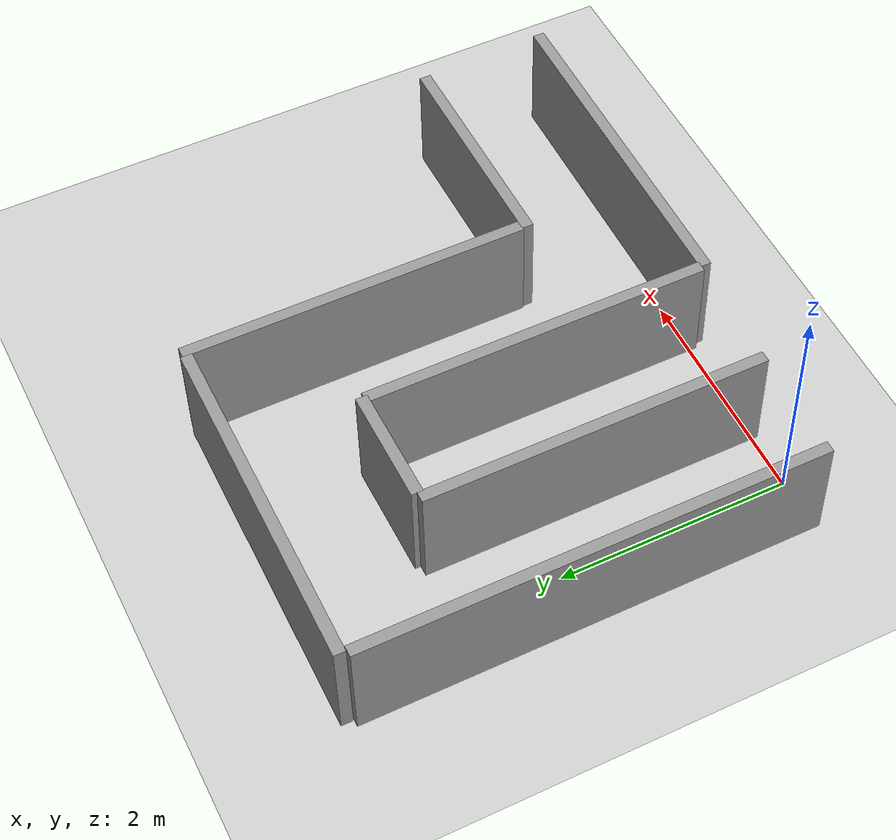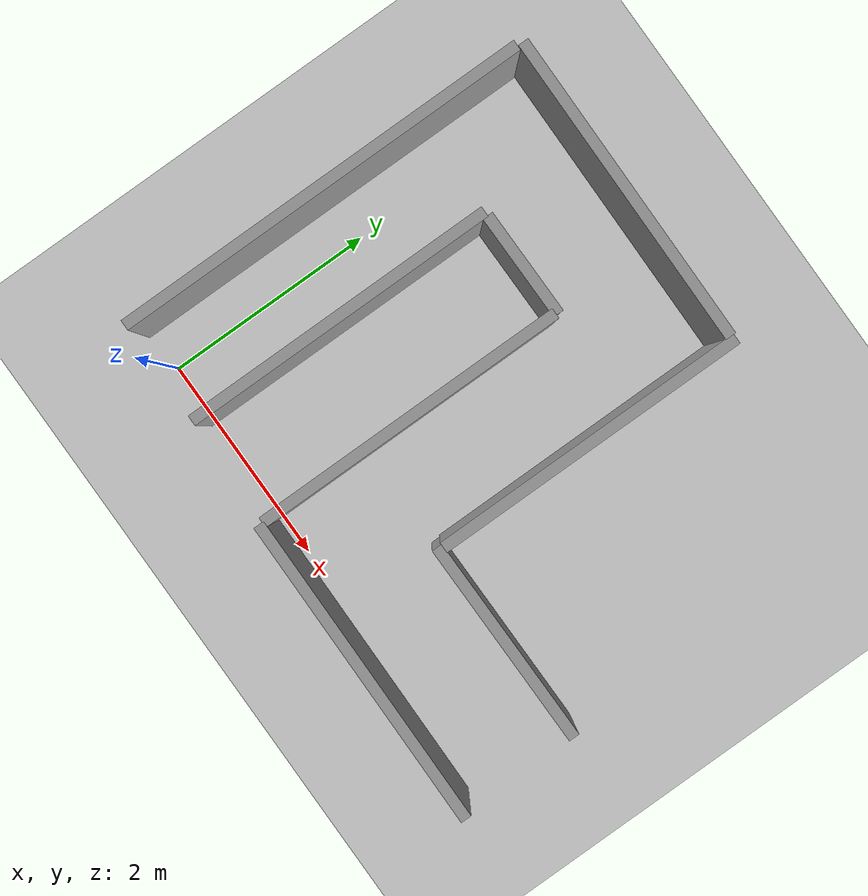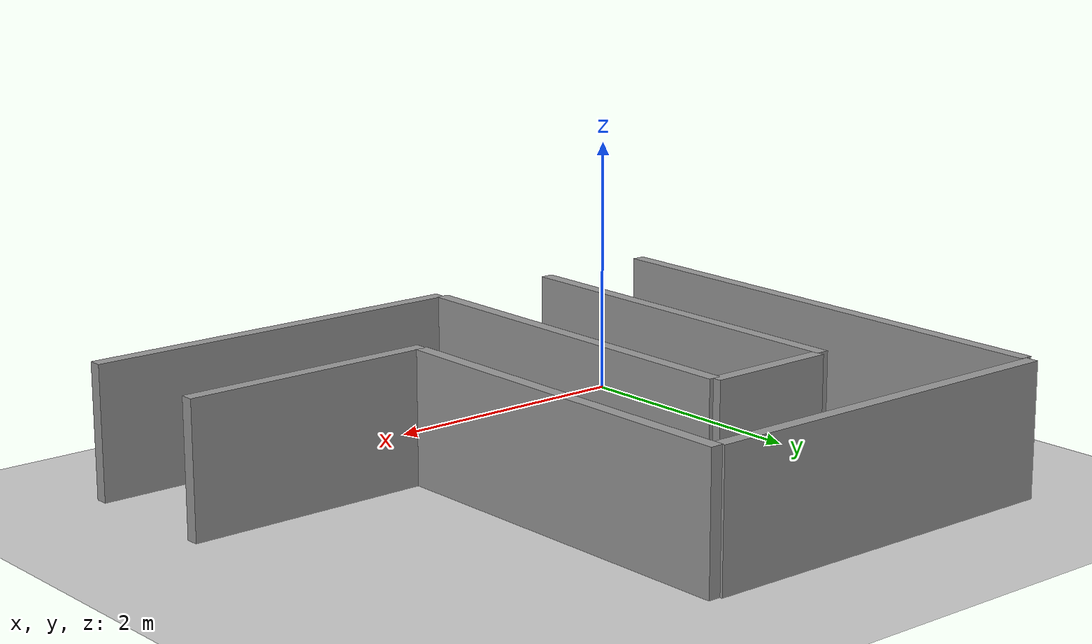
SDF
<sdf version="1.6">
 <world name="default">
  <light name="sun" type="directional">
   <pose>0 0 10 0 -0 0</pose>
   <diffuse>0.8 0.8 0.8 1</diffuse>
   <specular>0.2 0.2 0.2 1</specular>
   <attenuation>
    <range>1000</range>
    <constant>0.9</constant>
    <linear>0.01</linear>
    <quadratic>0.001</quadratic>
   </attenuation>
   <direction>-0.5 0.1 -0.9</direction>
  </light>
  <model name="ground_plane">
   <static>1</static>
   <link name="link">
    <collision name="collision">
     <geometry><plane><normal>0 0 1</normal><size>100 100</size></plane></geometry>
     <surface>
      <contact><collide_bitmask>65535</collide_bitmask></contact>
      <friction><ode><mu>100</mu><mu2>50</mu2></ode></friction>
     </surface>
    </collision>
    <visual name="visual">
     <cast_shadows>0</cast_shadows>
     <geometry><plane><normal>0 0 1</normal><size>100 100</size></plane></geometry>
     <material>
      <script><uri>file://media/materials/scripts/gazebo.material</uri><name>Gazebo/Grey</name></script>
     </material>
    </visual>
   </link>
  </model>
  <gravity>0 0 -9.8</gravity>
  <magnetic_field>6e-06 2.3e-05 -4.2e-05</magnetic_field>
  <atmosphere type="adiabatic"/>
  <physics name="default_physics" default="0" type="ode">
   <max_step_size>0.001</max_step_size>
   <real_time_factor>1</real_time_factor>
   <real_time_update_rate>1000</real_time_update_rate>
  </physics>
  <scene><ambient>0.4 0.4 0.4 1</ambient><background>0.7 0.7 0.7 1</background><shadows>1</shadows></scene>
  <spherical_coordinates>
   <surface_model>EARTH_WGS84</surface_model>
   <latitude_deg>0</latitude_deg>
   <longitude_deg>0</longitude_deg>
   <elevation>0</elevation>
   <heading_deg>0</heading_deg>
  </spherical_coordinates>
  <model name="simple_maze">
   <link name="link_1">
    <inertial>
     <mass>2.97708</mass>
     <inertia><ixx>2.44694</ixx><ixy>0</ixy><ixz>0</ixz><iyy>0.250571</iyy><iyz>0</iyz><izz>2.20133</izz></inertia>
    </inertial>
    <pose>0.94189 1.48381 0.5 0 -0 0</pose>
    <visual name="visual">
     <geometry><box><size>0.1 2.9771 1</size></box></geometry>
     <material>
      <lighting>1</lighting>
      <script><uri>file://media/materials/scripts/gazebo.material</uri><name>Gazebo/Grey</name></script>
      <shader type="pixel"><normal_map>__default__</normal_map></shader>
      <ambient>0.3 0.3 0.3 1</ambient>
      <diffuse>0.7 0.7 0.7 1</diffuse>
      <specular>0.01 0.01 0.01 1</specular>
      <emissive>0 0 0 1</emissive>
     </material>
    </visual>
    <collision name="collision">
     <geometry><box><size>0.1 2.9771 1</size></box></geometry>
     <surface>
      <friction>
       <ode><mu>1</mu><mu2>1</mu2><fdir1>0 0 0</fdir1><slip1>0</slip1><slip2>0</slip2></ode>
       <torsional>
        <coefficient>1</coefficient>
        <patch_radius>0</patch_radius>
        <surface_radius>0</surface_radius>
        <use_patch_radius>1</use_patch_radius>
        <ode><slip>0</slip></ode>
       </torsional>
      </friction>
      <bounce><restitution_coefficient>0</restitution_coefficient><threshold>1e+06</threshold></bounce>
      <contact>
       <collide_without_contact>0</collide_without_contact>
       <collide_without_contact_bitmask>1</collide_without_contact_bitmask>
       <collide_bitmask>1</collide_bitmask>
       <ode>
        <soft_cfm>0</soft_cfm>
        <soft_erp>0.2</soft_erp>
        <kp>1e+13</kp>
        <kd>1</kd>
        <max_vel>0.01</max_vel>
        <min_depth>0</min_depth>
       </ode>
       <bullet>
        <split_impulse>1</split_impulse>
        <split_impulse_penetration_threshold>-0.01</split_impulse_penetration_threshold>
        <soft_cfm>0</soft_cfm>
        <soft_erp>0.2</soft_erp>
        <kp>1e+13</kp>
        <kd>1</kd>
       </bullet>
      </contact>
     </surface>
    </collision>
   </link>
   <link name="link_1_clone_0">
    <inertial>
     <mass>3.98576</mass>
     <inertia><ixx>5.6087</ixx><ixy>0</ixy><ixz>0</ixz><iyy>0.335468</iyy><iyz>0</iyz><izz>5.27988</izz></inertia>
    </inertial>
    <pose>-0.022275 1.99468 0.5 0 -0 0</pose>
    <visual name="visual">
     <geometry><box><size>0.1 3.98575 1</size></box></geometry>
     <material>
      <lighting>1</lighting>
      <script><uri>file://media/materials/scripts/gazebo.material</uri><name>Gazebo/Grey</name></script>
      <shader type="pixel"><normal_map>__default__</normal_map></shader>
      <ambient>0.3 0.3 0.3 1</ambient>
      <diffuse>0.7 0.7 0.7 1</diffuse>
      <specular>0.01 0.01 0.01 1</specular>
      <emissive>0 0 0 1</emissive>
     </material>
    </visual>
    <collision name="collision">
     <geometry><box><size>0.1 3.98575 1</size></box></geometry>
     <surface>
      <friction>
       <ode><mu>1</mu><mu2>1</mu2><fdir1>0 0 0</fdir1><slip1>0</slip1><slip2>0</slip2></ode>
       <torsional>
        <coefficient>1</coefficient>
        <patch_radius>0</patch_radius>
        <surface_radius>0</surface_radius>
        <use_patch_radius>1</use_patch_radius>
        <ode><slip>0</slip></ode>
       </torsional>
      </friction>
      <bounce><restitution_coefficient>0</restitution_coefficient><threshold>1e+06</threshold></bounce>
      <contact>
       <collide_without_contact>0</collide_without_contact>
       <collide_without_contact_bitmask>1</collide_without_contact_bitmask>
       <collide_bitmask>1</collide_bitmask>
       <ode>
        <soft_cfm>0</soft_cfm>
        <soft_erp>0.2</soft_erp>
        <kp>1e+13</kp>
        <kd>1</kd>
        <max_vel>0.01</max_vel>
        <min_depth>0</min_depth>
       </ode>
       <bullet>
        <split_impulse>1</split_impulse>
        <split_impulse_penetration_threshold>-0.01</split_impulse_penetration_threshold>
        <soft_cfm>0</soft_cfm>
        <soft_erp>0.2</soft_erp>
        <kp>1e+13</kp>
        <kd>1</kd>
       </bullet>
      </contact>
     </surface>
    </collision>
   </link>
   <link name="link_1_clone_1">
    <inertial>
     <mass>2.97708</mass>
     <inertia><ixx>2.44694</ixx><ixy>0</ixy><ixz>0</ixz><iyy>0.250571</iyy><iyz>0</iyz><izz>2.20133</izz></inertia>
    </inertial>
    <pose>1.47351 4.03516 0.5 0 0 -1.57641</pose>
    <visual name="visual">
     <geometry><box><size>0.1 2.9771 1</size></box></geometry>
     <material>
      <lighting>1</lighting>
      <script><uri>file://media/materials/scripts/gazebo.material</uri><name>Gazebo/Grey</name></script>
      <shader type="pixel"><normal_map>__default__</normal_map></shader>
      <ambient>0.3 0.3 0.3 1</ambient>
      <diffuse>0.7 0.7 0.7 1</diffuse>
      <specular>0.01 0.01 0.01 1</specular>
      <emissive>0 0 0 1</emissive>
     </material>
    </visual>
    <collision name="collision">
     <geometry><box><size>0.1 2.9771 1</size></box></geometry>
     <surface>
      <friction>
       <ode><mu>1</mu><mu2>1</mu2><fdir1>0 0 0</fdir1><slip1>0</slip1><slip2>0</slip2></ode>
       <torsional>
        <coefficient>1</coefficient>
        <patch_radius>0</patch_radius>
        <surface_radius>0</surface_radius>
        <use_patch_radius>1</use_patch_radius>
        <ode><slip>0</slip></ode>
       </torsional>
      </friction>
      <bounce><restitution_coefficient>0</restitution_coefficient><threshold>1e+06</threshold></bounce>
      <contact>
       <collide_without_contact>0</collide_without_contact>
       <collide_without_contact_bitmask>1</collide_without_contact_bitmask>
       <collide_bitmask>1</collide_bitmask>
       <ode>
        <soft_cfm>0</soft_cfm>
        <soft_erp>0.2</soft_erp>
        <kp>1e+13</kp>
        <kd>1</kd>
        <max_vel>0.01</max_vel>
        <min_depth>0</min_depth>
       </ode>
       <bullet>
        <split_impulse>1</split_impulse>
        <split_impulse_penetration_threshold>-0.01</split_impulse_penetration_threshold>
        <soft_cfm>0</soft_cfm>
        <soft_erp>0.2</soft_erp>
        <kp>1e+13</kp>
        <kd>1</kd>
       </bullet>
      </contact>
     </surface>
    </collision>
   </link>
   <link name="link_1_clone_1_clone">
    <inertial>
     <mass>2.97708</mass>
     <inertia><ixx>2.44694</ixx><ixy>0</ixy><ixz>0</ixz><iyy>0.250571</iyy><iyz>0</iyz><izz>2.20133</izz></inertia>
    </inertial>
    <pose>3.45108 -0.061612 0.5 0 0 -1.57641</pose>
    <visual name="visual">
     <geometry><box><size>0.1 2.9771 1</size></box></geometry>
     <material>
      <lighting>1</lighting>
      <script><uri>file://media/materials/scripts/gazebo.material</uri><name>Gazebo/Grey</name></script>
      <shader type="pixel"><normal_map>__default__</normal_map></shader>
      <ambient>0.3 0.3 0.3 1</ambient>
      <diffuse>0.7 0.7 0.7 1</diffuse>
      <specular>0.01 0.01 0.01 1</specular>
      <emissive>0 0 0 1</emissive>
     </material>
    </visual>
    <collision name="collision">
     <geometry><box><size>0.1 2.9771 1</size></box></geometry>
     <surface>
      <friction>
       <ode><mu>1</mu><mu2>1</mu2><fdir1>0 0 0</fdir1><slip1>0</slip1><slip2>0</slip2></ode>
       <torsional>
        <coefficient>1</coefficient>
        <patch_radius>0</patch_radius>
        <surface_radius>0</surface_radius>
        <use_patch_radius>1</use_patch_radius>
        <ode><slip>0</slip></ode>
       </torsional>
      </friction>
      <bounce><restitution_coefficient>0</restitution_coefficient><threshold>1e+06</threshold></bounce>
      <contact>
       <collide_without_contact>0</collide_without_contact>
       <collide_without_contact_bitmask>1</collide_without_contact_bitmask>
       <collide_bitmask>1</collide_bitmask>
       <ode>
        <soft_cfm>0</soft_cfm>
        <soft_erp>0.2</soft_erp>
        <kp>1e+13</kp>
        <kd>1</kd>
        <max_vel>0.01</max_vel>
        <min_depth>0</min_depth>
       </ode>
       <bullet>
        <split_impulse>1</split_impulse>
        <split_impulse_penetration_threshold>-0.01</split_impulse_penetration_threshold>
        <soft_cfm>0</soft_cfm>
        <soft_erp>0.2</soft_erp>
        <kp>1e+13</kp>
        <kd>1</kd>
       </bullet>
      </contact>
     </surface>
    </collision>
   </link>
   <link name="link_1_clone_2">
    <inertial>
     <mass>2.97708</mass>
     <inertia><ixx>2.44694</ixx><ixy>0</ixy><ixz>0</ixz><iyy>0.250571</iyy><iyz>0</iyz><izz>2.20133</izz></inertia>
    </inertial>
    <pose>3.0051 2.5681 0.5 0 -0 0</pose>
    <visual name="visual">
     <geometry><box><size>0.1 2.9771 1</size></box></geometry>
     <material>
      <lighting>1</lighting>
      <script><uri>file://media/materials/scripts/gazebo.material</uri><name>Gazebo/Grey</name></script>
      <shader type="pixel"><normal_map>__default__</normal_map></shader>
      <ambient>0.3 0.3 0.3 1</ambient>
      <diffuse>0.7 0.7 0.7 1</diffuse>
      <specular>0.01 0.01 0.01 1</specular>
      <emissive>0 0 0 1</emissive>
     </material>
    </visual>
    <collision name="collision">
     <geometry><box><size>0.1 2.9771 1</size></box></geometry>
     <surface>
      <friction>
       <ode><mu>1</mu><mu2>1</mu2><fdir1>0 0 0</fdir1><slip1>0</slip1><slip2>0</slip2></ode>
       <torsional>
        <coefficient>1</coefficient>
        <patch_radius>0</patch_radius>
        <surface_radius>0</surface_radius>
        <use_patch_radius>1</use_patch_radius>
        <ode><slip>0</slip></ode>
       </torsional>
      </friction>
      <bounce><restitution_coefficient>0</restitution_coefficient><threshold>1e+06</threshold></bounce>
      <contact>
       <collide_without_contact>0</collide_without_contact>
       <collide_without_contact_bitmask>1</collide_without_contact_bitmask>
       <collide_bitmask>1</collide_bitmask>
       <ode>
        <soft_cfm>0</soft_cfm>
        <soft_erp>0.2</soft_erp>
        <kp>1e+13</kp>
        <kd>1</kd>
        <max_vel>0.01</max_vel>
        <min_depth>0</min_depth>
       </ode>
       <bullet>
        <split_impulse>1</split_impulse>
        <split_impulse_penetration_threshold>-0.01</split_impulse_penetration_threshold>
        <soft_cfm>0</soft_cfm>
        <soft_erp>0.2</soft_erp>
        <kp>1e+13</kp>
        <kd>1</kd>
       </bullet>
      </contact>
     </surface>
    </collision>
   </link>
   <link name="link_1_clone_3">
    <inertial>
     <mass>2.97708</mass>
     <inertia><ixx>2.44694</ixx><ixy>0</ixy><ixz>0</ixz><iyy>0.250571</iyy><iyz>0</iyz><izz>2.20133</izz></inertia>
    </inertial>
    <pose>1.9665 1.47024 0.5 0 -0 0</pose>
    <visual name="visual">
     <geometry><box><size>0.1 2.9771 1</size></box></geometry>
     <material>
      <lighting>1</lighting>
      <script><uri>file://media/materials/scripts/gazebo.material</uri><name>Gazebo/Grey</name></script>
      <shader type="pixel"><normal_map>__default__</normal_map></shader>
      <ambient>0.3 0.3 0.3 1</ambient>
      <diffuse>0.7 0.7 0.7 1</diffuse>
      <specular>0.01 0.01 0.01 1</specular>
      <emissive>0 0 0 1</emissive>
     </material>
    </visual>
    <collision name="collision">
     <geometry><box><size>0.1 2.9771 1</size></box></geometry>
     <surface>
      <friction>
       <ode><mu>1</mu><mu2>1</mu2><fdir1>0 0 0</fdir1><slip1>0</slip1><slip2>0</slip2></ode>
       <torsional>
        <coefficient>1</coefficient>
        <patch_radius>0</patch_radius>
        <surface_radius>0</surface_radius>
        <use_patch_radius>1</use_patch_radius>
        <ode><slip>0</slip></ode>
       </torsional>
      </friction>
      <bounce><restitution_coefficient>0</restitution_coefficient><threshold>1e+06</threshold></bounce>
      <contact>
       <collide_without_contact>0</collide_without_contact>
       <collide_without_contact_bitmask>1</collide_without_contact_bitmask>
       <collide_bitmask>1</collide_bitmask>
       <ode>
        <soft_cfm>0</soft_cfm>
        <soft_erp>0.2</soft_erp>
        <kp>1e+13</kp>
        <kd>1</kd>
        <max_vel>0.01</max_vel>
        <min_depth>0</min_depth>
       </ode>
       <bullet>
        <split_impulse>1</split_impulse>
        <split_impulse_penetration_threshold>-0.01</split_impulse_penetration_threshold>
        <soft_cfm>0</soft_cfm>
        <soft_erp>0.2</soft_erp>
        <kp>1e+13</kp>
        <kd>1</kd>
       </bullet>
      </contact>
     </surface>
    </collision>
   </link>
   <link name="link_1_clone_clone">
    <inertial>
     <mass>1</mass>
     <inertia>
      <ixx>0.166667</ixx>
      <ixy>0</ixy>
      <ixz>0</ixz>
      <iyy>0.166667</iyy>
      <iyz>0</iyz>
      <izz>0.166667</izz>
     </inertia>
    </inertial>
    <pose>1.48317 2.97257 0.5 0 0 -1.56465</pose>
    <visual name="visual">
     <geometry><box><size>0.1 1 1</size></box></geometry>
     <material>
      <lighting>1</lighting>
      <script><uri>file://media/materials/scripts/gazebo.material</uri><name>Gazebo/Grey</name></script>
      <shader type="pixel"><normal_map>__default__</normal_map></shader>
      <ambient>0.3 0.3 0.3 1</ambient>
      <diffuse>0.7 0.7 0.7 1</diffuse>
      <specular>0.01 0.01 0.01 1</specular>
      <emissive>0 0 0 1</emissive>
     </material>
    </visual>
    <collision name="collision">
     <geometry><box><size>0.1 1 1</size></box></geometry>
     <surface>
      <friction>
       <ode><mu>1</mu><mu2>1</mu2><fdir1>0 0 0</fdir1><slip1>0</slip1><slip2>0</slip2></ode>
       <torsional>
        <coefficient>1</coefficient>
        <patch_radius>0</patch_radius>
        <surface_radius>0</surface_radius>
        <use_patch_radius>1</use_patch_radius>
        <ode><slip>0</slip></ode>
       </torsional>
      </friction>
      <bounce><restitution_coefficient>0</restitution_coefficient><threshold>1e+06</threshold></bounce>
      <contact>
       <collide_without_contact>0</collide_without_contact>
       <collide_without_contact_bitmask>1</collide_without_contact_bitmask>
       <collide_bitmask>1</collide_bitmask>
       <ode>
        <soft_cfm>0</soft_cfm>
        <soft_erp>0.2</soft_erp>
        <kp>1e+13</kp>
        <kd>1</kd>
        <max_vel>0.01</max_vel>
        <min_depth>0</min_depth>
       </ode>
       <bullet>
        <split_impulse>1</split_impulse>
        <split_impulse_penetration_threshold>-0.01</split_impulse_penetration_threshold>
        <soft_cfm>0</soft_cfm>
        <soft_erp>0.2</soft_erp>
        <kp>1e+13</kp>
        <kd>1</kd>
       </bullet>
      </contact>
     </surface>
    </collision>
   </link>
   <link name="link_1_clone_clone_clone">
    <inertial>
     <mass>1.93723</mass>
     <inertia>
      <ixx>0.767284</ixx>
      <ixy>0</ixy>
      <ixz>0</ixz>
      <iyy>0.16305</iyy>
      <iyz>0</iyz>
      <izz>0.607462</izz>
     </inertia>
    </inertial>
    <pose>3.94021 1.04242 0.5 0 0 -1.56465</pose>
    <visual name="visual">
     <geometry><box><size>0.1 1.93723 1</size></box></geometry>
     <material>
      <lighting>1</lighting>
      <script><uri>file://media/materials/scripts/gazebo.material</uri><name>Gazebo/Grey</name></script>
      <shader type="pixel"><normal_map>__default__</normal_map></shader>
      <ambient>0.3 0.3 0.3 1</ambient>
      <diffuse>0.7 0.7 0.7 1</diffuse>
      <specular>0.01 0.01 0.01 1</specular>
      <emissive>0 0 0 1</emissive>
     </material>
    </visual>
    <collision name="collision">
     <geometry><box><size>0.1 1.93723 1</size></box></geometry>
     <surface>
      <friction>
       <ode><mu>1</mu><mu2>1</mu2><fdir1>0 0 0</fdir1><slip1>0</slip1><slip2>0</slip2></ode>
       <torsional>
        <coefficient>1</coefficient>
        <patch_radius>0</patch_radius>
        <surface_radius>0</surface_radius>
        <use_patch_radius>1</use_patch_radius>
        <ode><slip>0</slip></ode>
       </torsional>
      </friction>
      <bounce><restitution_coefficient>0</restitution_coefficient><threshold>1e+06</threshold></bounce>
      <contact>
       <collide_without_contact>0</collide_without_contact>
       <collide_without_contact_bitmask>1</collide_without_contact_bitmask>
       <collide_bitmask>1</collide_bitmask>
       <ode>
        <soft_cfm>0</soft_cfm>
        <soft_erp>0.2</soft_erp>
        <kp>1e+13</kp>
        <kd>1</kd>
        <max_vel>0.01</max_vel>
        <min_depth>0</min_depth>
       </ode>
       <bullet>
        <split_impulse>1</split_impulse>
        <split_impulse_penetration_threshold>-0.01</split_impulse_penetration_threshold>
        <soft_cfm>0</soft_cfm>
        <soft_erp>0.2</soft_erp>
        <kp>1e+13</kp>
        <kd>1</kd>
       </bullet>
      </contact>
     </surface>
    </collision>
   </link>
   <static>1</static>
   <pose>-0.399374 -0.04621 0 0 -0 0</pose>
  </model>
 </world>
</sdf>
